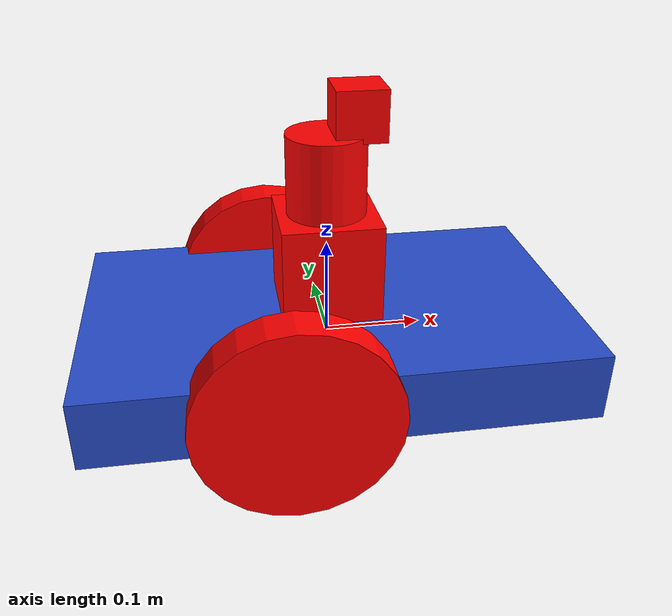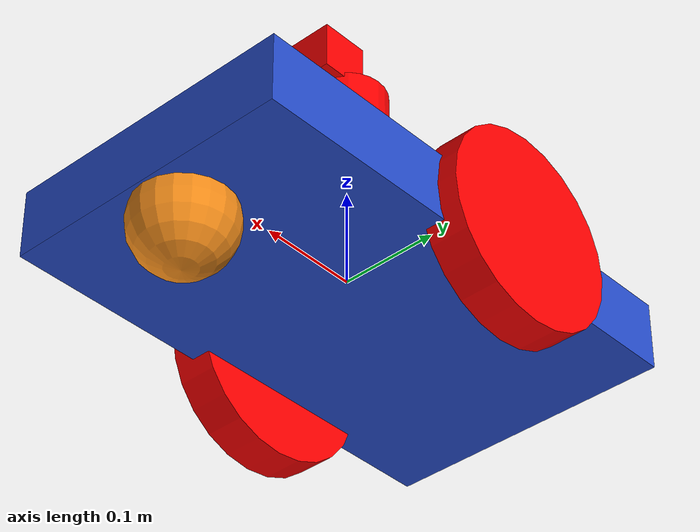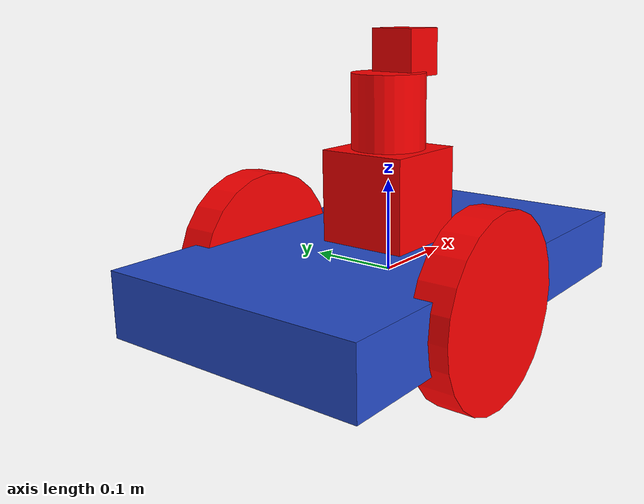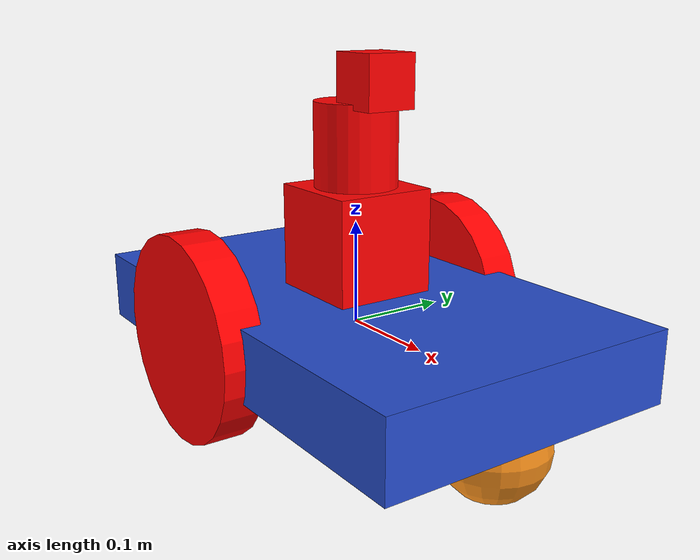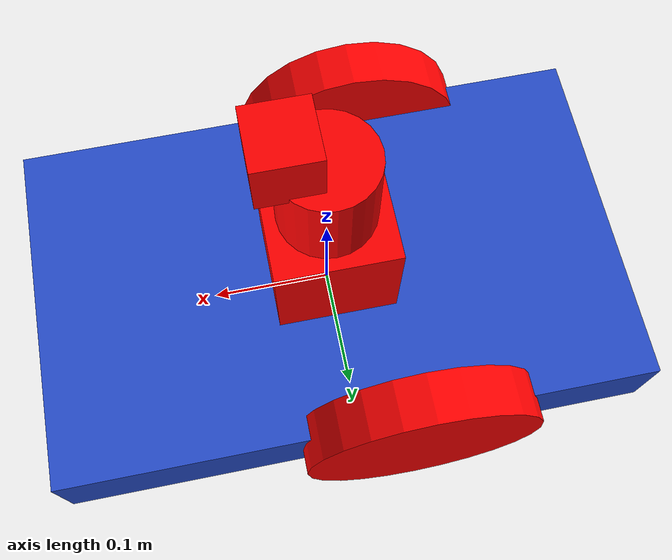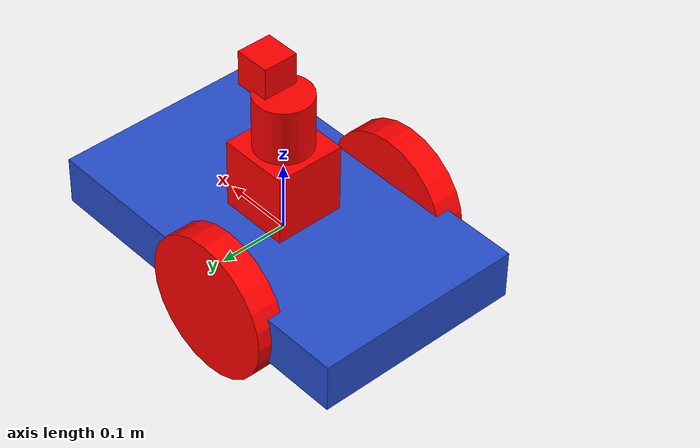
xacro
<?xml version="1.0"?>
<robot xmlns:xacro="http://www.ros.org/wiki/xacro" name="robot4_xacro">
 <xacro:include filename="$(find robot_urdf)/urdf/robot4.gazebo"/>
 <xacro:include filename="$(find robot_urdf)/urdf/materials.xacro" />

  <!-- Inertia definition (cylinder, wheel + chassis) -->
  <xacro:macro name="cylinder_inertia" params="mass r l">
    <inertia ixx="${mass*(3*r*r+l*l)/12}" ixy = "0" ixz = "0"
                iyy="${mass*(3*r*r+l*l)/12}" iyz = "0" izz="${mass*(r*r)/2}" />
  </xacro:macro>

	<xacro:macro name="default_inertial" params="mass">
      <inertial>
        <mass value="${mass}" />
        <origin rpy="0 1.5707 1.5707" xyz="0 0 0"/>
        <inertia ixx="0.000526666666667" ixy="0" ixz="0" iyy="0.000526666666667" iyz="0" izz="0.001"/>
      </inertial>
	</xacro:macro>

  <!-- Wheel defnition -->
  <xacro:property name="length_wheel" value="0.04" />
	<xacro:property name="radius_wheel" value="0.1" />
  <xacro:property name="mass_wheel" value="0.2" />

  <!-- geometry-->
  <xacro:macro name="wheel_geometry">
		<geometry>
       			<cylinder length="${length_wheel}" radius="${radius_wheel}"/>
     	</geometry>
	</xacro:macro>

  <!-- link -->
  <xacro:macro name="link_wheel" params="name">
    <link name="${name}">
        <xacro:default_inertial mass="${mass_wheel}"/>
        <collision name="${name}_collision">
          <origin rpy="0 1.5707 1.5707" xyz="0 0 0"/>
          <xacro:wheel_geometry />
        </collision>
        <visual name="${name}_visual">
          <origin rpy="0 1.5707 1.5707" xyz="0 0 0"/>
          <xacro:wheel_geometry />
          <material name="red"/>
        </visual>
    </link>
  </xacro:macro>

  <!-- joint -->
  <xacro:macro name="joint_wheel" params="name child origin_xyz">
    <joint name="${name}" type="continuous">
      <origin rpy="0 0 0" xyz="${origin_xyz}"/>
      <child link="${child}"/>
      <parent link="link_chassis"/>
      <axis rpy="0 0 0" xyz="0 1 0"/>
      <limit effort="10000" velocity="1000"/>
      <joint_properties damping="1.0" friction="1.0"/>
    </joint>
  </xacro:macro>

  <!-- Chassis definition -->
  <link name="link_chassis">
    <!-- pose and inertial -->
    <pose>0 0 0.1 0 0 0</pose>
    <inertial>
      <mass value="5"/>
      <origin rpy="0 0 0" xyz="0 0 0.1"/>
      <inertia ixx="0.0395416666667" ixy="0" ixz="0" iyy="0.106208333333" iyz="0" izz="0.106208333333"/>
    </inertial>
    <!-- body -->
    <collision name="collision_chassis">
      <geometry>
        <box size="0.5 0.3 0.07"/>
      </geometry>
    </collision>
    <visual>
      <origin rpy="0 0 0" xyz="0 0 0"/>
      <geometry>
        <box size="0.5 0.3 0.07"/>
      </geometry>
      <material name="blue"/>
    </visual>
    <!-- caster front -->
    <collision name="caster_front_collision">
      <origin rpy=" 0 0 0" xyz="0.35 0 -0.05"/>
      <geometry>
        <sphere radius="0.05"/>
      </geometry>
    </collision>
    <visual name="caster_front_visual">
      <origin rpy=" 0 0 0" xyz="0.2 0 -0.05"/>
      <geometry>
        <sphere radius="0.05"/>
      </geometry>
    </visual>
  </link>

  <!-- Wheel Creation -->
  <xacro:link_wheel name="link_right_wheel" />
  <xacro:link_wheel name="link_left_wheel" />
  <xacro:joint_wheel name="joint_right_wheel"  child="link_right_wheel"  origin_xyz="-0.05 0.15 0"  />
  <xacro:joint_wheel name="joint_left_wheel"   child="link_left_wheel"   origin_xyz="-0.05 -0.15 0"  />

  <!--arm definition -->

  <link name="arm_base_link">
  	<inertial>
  		<mass value="0.1"/>
  		<origin xyz="0 0 0" rpy="0 0 0" />
  		<inertia ixx="0.0000416666667" ixy="0" ixz="0" iyy="0.0000416666667" iyz="0" izz="0.0000416666667"/>
  	</inertial>
  	<collision>
  	  <origin xyz="0 0 0" rpy="0 0 0"/>
      <geometry>
        <box size="0.1 0.1 0.1"/>
      </geometry>
  	</collision>
  	<visual>
  	  <origin xyz="0 0 0" rpy="0 0 0"/>
      <geometry>
        <box size="0.1 0.1 0.1"/>
      </geometry>
      <material name="red" />
  	</visual>
  </link>

  <joint name="arm_base_to_base" type="fixed">
  	<origin rpy="0 0 0" xyz="0 0 0.085"/>
  	<parent link="link_chassis"/>
  	<child link="arm_base_link"/>
  </joint>

  <link name="arm_link_01">
  	<inertial>
  		<mass value="0.025"/>
  		<origin xyz="0 0 0" rpy="0 0 0" />
  		<inertia ixx="0.000010279" ixy="0" ixz="0" iyy="0.000010279" iyz="0" izz="0.000007225"/>
  	</inertial>
  	<collision>
  	  <origin xyz="0 0 0" rpy="0 0 0"/>
      <geometry>
        <cylinder radius="0.04" length="0.08"/>
      </geometry>
  	</collision>
  	<visual>
  	  <origin xyz="0 0 0" rpy="0 0 0"/>
      <geometry>
        <cylinder radius="0.04" length="0.08"/>
      </geometry>
      <material name="red" />
  	</visual>
  </link>

  <joint name="arm_joint_01" type="continuous">
  	<axis xyz="0 0 1"/>
  	<origin rpy="0 0 0" xyz="0 0 0.09"/>
  	<parent link="arm_base_link"/>
  	<child link="arm_link_01"/>
  </joint>

  <!-- Camera -->
  <link name="camera_link">
	    <collision>
	      <origin xyz="0 0 0.06" rpy="0 0 0"/>
	      <geometry>
		<box size="0.05 0.05 0.05"/>
	      </geometry>
	    </collision>
	    <visual>
	      <origin xyz="0 0 0.06" rpy="0 0 0"/>
	      <geometry>
		<box size="0.05 0.05 0.05"/>
	      </geometry>
	      <material name="red">
		<color rgba="1 0 0 1"/>
	      </material>
	    </visual>
	    <inertial>
	      <mass value="1e-5" />
	      <origin xyz="0 0 0" rpy="0 0 0"/>
	      <inertia ixx="1e-6" ixy="0" ixz="0" iyy="1e-6" iyz="0" izz="1e-6" />
	    </inertial>
  </link>

  <joint name="camera_joint" type="fixed">
	    <axis xyz="0 1 0" />
	    <origin xyz="0.03 0 0.0" rpy="0 0 0"/>
	    <parent link="arm_link_01"/>
	    <child link="camera_link"/>
	 </joint>

</robot>
